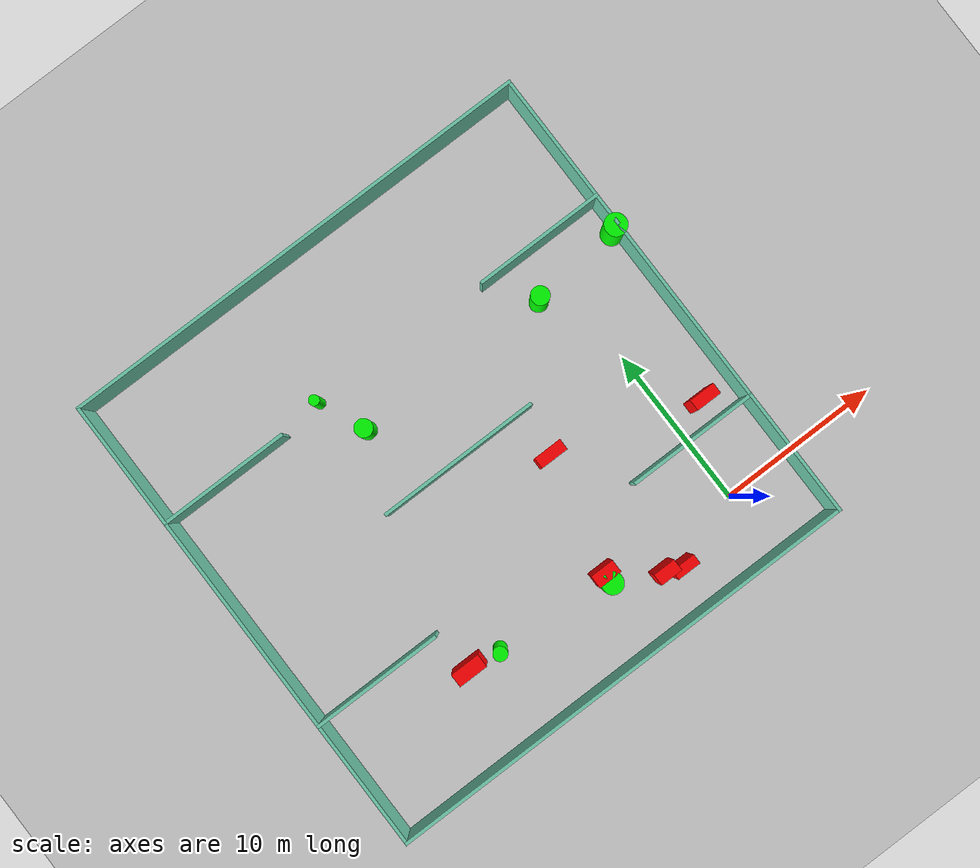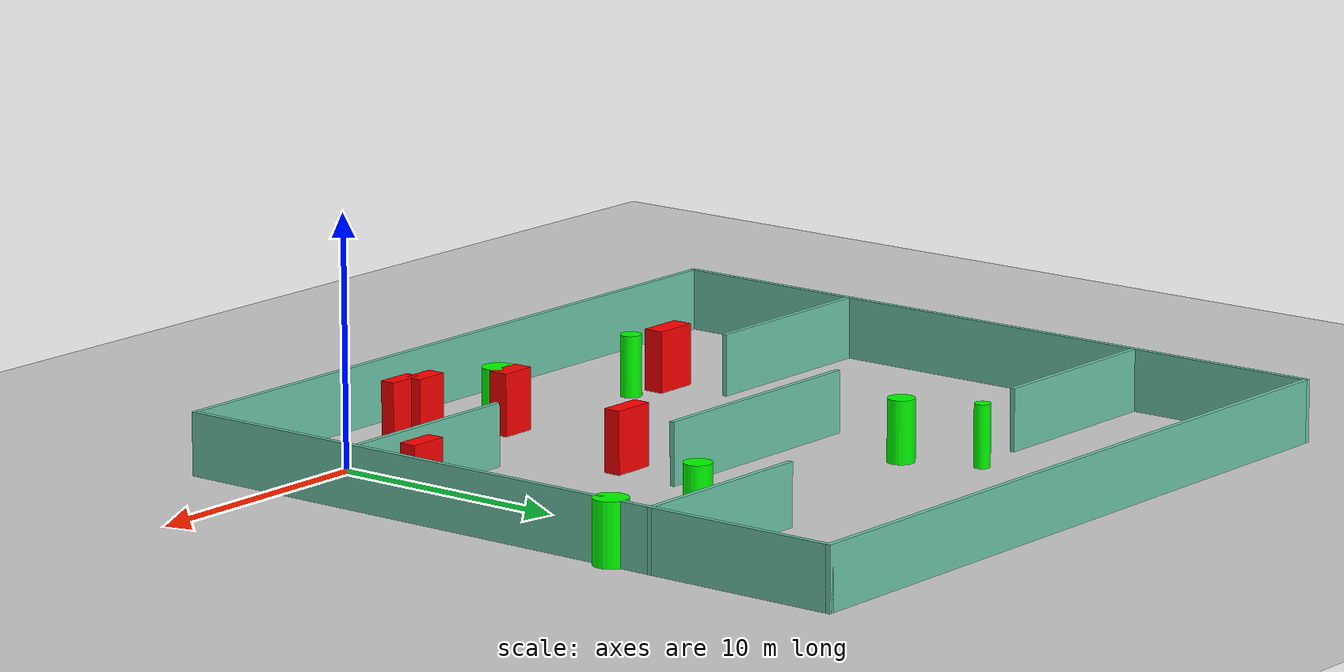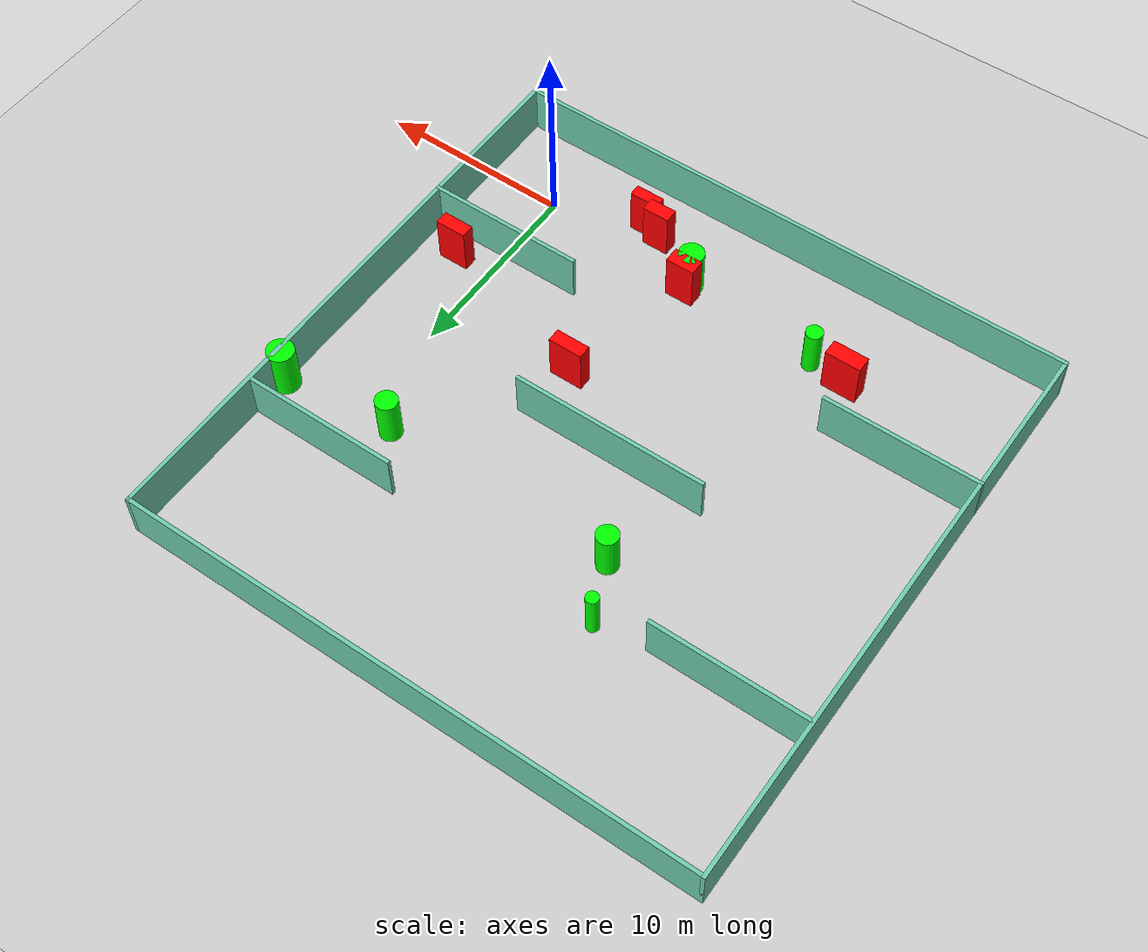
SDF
<sdf version="1.7">
 <world name="default">
  <light name="sun" type="directional">
   <pose>0 0 10 0 -0 0</pose>
   <diffuse>0.8 0.8 0.8 1</diffuse>
   <specular>0.2 0.2 0.2 1</specular>
   <attenuation>
    <range>1000</range>
    <constant>0.9</constant>
    <linear>0.01</linear>
    <quadratic>0.001</quadratic>
   </attenuation>
   <direction>-0.5 0.1 -0.9</direction>
   <spot><inner_angle>0</inner_angle><outer_angle>0</outer_angle><falloff>0</falloff></spot>
  </light>
  <model name="ground_plane">
   <static>1</static>
   <link name="link">
    <collision name="collision">
     <geometry><plane><normal>0 0 1</normal><size>100 100</size></plane></geometry>
     <surface>
      <contact><collide_bitmask>65535</collide_bitmask></contact>
      <friction><ode><mu>100</mu><mu2>50</mu2></ode></friction>
     </surface>
    </collision>
    <visual name="visual">
     <cast_shadows>0</cast_shadows>
     <geometry><plane><normal>0 0 1</normal><size>100 100</size></plane></geometry>
     <material>
      <script><uri>file://media/materials/scripts/gazebo.material</uri><name>Gazebo/Grey</name></script>
     </material>
    </visual>
   </link>
  </model>
  <gravity>0 0 -9.8</gravity>
  <magnetic_field>6e-06 2.3e-05 -4.2e-05</magnetic_field>
  <atmosphere type="adiabatic"/>
  <physics type="ode">
   <max_step_size>0.001</max_step_size>
   <real_time_factor>1</real_time_factor>
   <real_time_update_rate>1000</real_time_update_rate>
  </physics>
  <scene><ambient>0.4 0.4 0.4 1</ambient><background>0.7 0.7 0.7 1</background><shadows>1</shadows></scene>
  <spherical_coordinates>
   <surface_model>EARTH_WGS84</surface_model>
   <latitude_deg>0</latitude_deg>
   <longitude_deg>0</longitude_deg>
   <elevation>0</elevation>
   <heading_deg>0</heading_deg>
  </spherical_coordinates>
  <model name="my_base_walls">
   <link name="Wall_10">
    <collision name="Wall_10_Collision">
     <geometry><box><size>8.2 0.2 2.5</size></box></geometry>
     <pose>0 0 1.25 0 -0 0</pose>
    </collision>
    <visual name="Wall_10_Visual">
     <pose>0 0 1.25 0 -0 0</pose>
     <geometry><box><size>8.2 0.2 2.5</size></box></geometry>
     <material>
      <script><uri>file://media/materials/scripts/gazebo.material</uri><name>Gazebo/Grey</name></script>
      <ambient>0.435294 0.796078 0.67451 1</ambient>
     </material>
     <meta><layer>0</layer></meta>
    </visual>
    <pose>-11 -7 0 0 -0 0</pose>
   </link>
   <link name="Wall_12">
    <collision name="Wall_12_Collision">
     <geometry><box><size>8.2 0.2 2.5</size></box></geometry>
     <pose>0 0 1.25 0 -0 0</pose>
    </collision>
    <visual name="Wall_12_Visual">
     <pose>0 0 1.25 0 -0 0</pose>
     <geometry><box><size>8.2 0.2 2.5</size></box></geometry>
     <material>
      <script><uri>file://media/materials/scripts/gazebo.material</uri><name>Gazebo/Grey</name></script>
      <ambient>0.435294 0.796078 0.67451 1</ambient>
     </material>
     <meta><layer>0</layer></meta>
    </visual>
    <pose>-11 7 0 0 -0 0</pose>
   </link>
   <link name="Wall_14">
    <collision name="Wall_14_Collision">
     <geometry><box><size>8.2 0.2 2.5</size></box></geometry>
     <pose>0 0 1.25 0 -0 0</pose>
    </collision>
    <visual name="Wall_14_Visual">
     <pose>0 0 1.25 0 -0 0</pose>
     <geometry><box><size>8.2 0.2 2.5</size></box></geometry>
     <material>
      <script><uri>file://media/materials/scripts/gazebo.material</uri><name>Gazebo/Grey</name></script>
      <ambient>0.435294 0.796078 0.67451 1</ambient>
     </material>
     <meta><layer>0</layer></meta>
    </visual>
    <pose>11 7 0 0 -0 3.14159</pose>
   </link>
   <link name="Wall_16">
    <collision name="Wall_16_Collision">
     <geometry><box><size>10.2 0.2 2.5</size></box></geometry>
     <pose>0 0 1.25 0 -0 0</pose>
    </collision>
    <visual name="Wall_16_Visual">
     <pose>0 0 1.25 0 -0 0</pose>
     <geometry><box><size>10.2 0.2 2.5</size></box></geometry>
     <material>
      <script><uri>file://media/materials/scripts/gazebo.material</uri><name>Gazebo/Grey</name></script>
      <ambient>0.435294 0.796078 0.67451 1</ambient>
     </material>
     <meta><layer>0</layer></meta>
    </visual>
    <pose>0 0 0 0 -0 3.14159</pose>
   </link>
   <link name="Wall_2">
    <collision name="Wall_2_Collision">
     <geometry><box><size>30.2 0.2 2.5</size></box></geometry>
     <pose>0 0 1.25 0 -0 0</pose>
    </collision>
    <visual name="Wall_2_Visual">
     <pose>0 0 1.25 0 -0 0</pose>
     <geometry><box><size>30.2 0.2 2.5</size></box></geometry>
     <material>
      <script><uri>file://media/materials/scripts/gazebo.material</uri><name>Gazebo/Grey</name></script>
      <ambient>0.435294 0.796078 0.67451 1</ambient>
     </material>
     <meta><layer>0</layer></meta>
    </visual>
    <pose>0 -15 0 0 -0 3.14159</pose>
   </link>
   <link name="Wall_3">
    <collision name="Wall_3_Collision">
     <geometry><box><size>30.2 0.2 2.5</size></box></geometry>
     <pose>0 0 1.25 0 -0 0</pose>
    </collision>
    <visual name="Wall_3_Visual">
     <pose>0 0 1.25 0 -0 0</pose>
     <geometry><box><size>30.2 0.2 2.5</size></box></geometry>
     <material>
      <script><uri>file://media/materials/scripts/gazebo.material</uri><name>Gazebo/Grey</name></script>
      <ambient>0.435294 0.796078 0.67451 1</ambient>
     </material>
     <meta><layer>0</layer></meta>
    </visual>
    <pose>-15 0 0 0 -0 1.5708</pose>
   </link>
   <link name="Wall_4">
    <collision name="Wall_4_Collision">
     <geometry><box><size>30.2 0.2 2.5</size></box></geometry>
     <pose>0 0 1.25 0 -0 0</pose>
    </collision>
    <visual name="Wall_4_Visual">
     <pose>0 0 1.25 0 -0 0</pose>
     <geometry><box><size>30.2 0.2 2.5</size></box></geometry>
     <material>
      <script><uri>file://media/materials/scripts/gazebo.material</uri><name>Gazebo/Grey</name></script>
      <ambient>0.435294 0.796078 0.67451 1</ambient>
     </material>
     <meta><layer>0</layer></meta>
    </visual>
    <pose>0 15 0 0 -0 0</pose>
   </link>
   <link name="Wall_6">
    <collision name="Wall_6_Collision">
     <geometry><box><size>30.2 0.2 2.5</size></box></geometry>
     <pose>0 0 1.25 0 -0 0</pose>
    </collision>
    <visual name="Wall_6_Visual">
     <pose>0 0 1.25 0 -0 0</pose>
     <geometry><box><size>30.2 0.2 2.5</size></box></geometry>
     <material>
      <script><uri>file://media/materials/scripts/gazebo.material</uri><name>Gazebo/Grey</name></script>
      <ambient>0.435294 0.796078 0.67451 1</ambient>
     </material>
     <meta><layer>0</layer></meta>
    </visual>
    <pose>15 0 0 0 -0 1.5708</pose>
   </link>
   <link name="Wall_8">
    <collision name="Wall_8_Collision">
     <geometry><box><size>8.2 0.2 2.5</size></box></geometry>
     <pose>0 0 1.25 0 -0 0</pose>
    </collision>
    <visual name="Wall_8_Visual">
     <pose>0 0 1.25 0 -0 0</pose>
     <geometry><box><size>8.2 0.2 2.5</size></box></geometry>
     <material>
      <script><uri>file://media/materials/scripts/gazebo.material</uri><name>Gazebo/Grey</name></script>
      <ambient>0.435294 0.796078 0.67451 1</ambient>
     </material>
     <meta><layer>0</layer></meta>
    </visual>
    <pose>11 -7 0 0 -0 3.14159</pose>
   </link>
   <static>1</static>
   <pose>-11 11 0 0 -0 0</pose>
  </model>
  <model name="cylinder1">
   <static>1</static>
   <link name="link">
    <inertial>
     <mass>1</mass>
     <inertia><ixx>0.5</ixx><ixy>0</ixy><ixz>0</ixz><iyy>0.5</iyy><iyz>0</iyz><izz>1</izz></inertia>
    </inertial>
    <collision name="collision">
     <geometry><cylinder><radius>0.5637747661125309</radius><length>2.5</length></cylinder></geometry>
    </collision>
    <visual name="visual">
     <geometry><cylinder><radius>0.5637747661125309</radius><length>2.5</length></cylinder></geometry>
     <material>
      <ambient>0 1 0 1</ambient>
      <diffuse>0 1 0 1</diffuse>
      <specular>0.1 0.1 0.1 1</specular>
      <emissive>0 0 0 0</emissive>
     </material>
    </visual>
   </link>
   <pose>-1.8925316632070164 15.445110293957317 1.25 0 0 0</pose>
  </model>
  <model name="cylinder2">
   <static>1</static>
   <link name="link">
    <inertial>
     <mass>1</mass>
     <inertia><ixx>0.5</ixx><ixy>0</ixy><ixz>0</ixz><iyy>0.5</iyy><iyz>0</iyz><izz>1</izz></inertia>
    </inertial>
    <collision name="collision">
     <geometry><cylinder><radius>0.43174058525953973</radius><length>2.5</length></cylinder></geometry>
    </collision>
    <visual name="visual">
     <geometry><cylinder><radius>0.43174058525953973</radius><length>2.5</length></cylinder></geometry>
     <material>
      <ambient>0 1 0 1</ambient>
      <diffuse>0 1 0 1</diffuse>
      <specular>0.1 0.1 0.1 1</specular>
      <emissive>0 0 0 0</emissive>
     </material>
    </visual>
   </link>
   <pose>-15.666455675745048 1.086122089512096 1.25 0 0 0</pose>
  </model>
  <model name="cylinder3">
   <static>1</static>
   <link name="link">
    <inertial>
     <mass>1</mass>
     <inertia><ixx>0.5</ixx><ixy>0</ixy><ixz>0</ixz><iyy>0.5</iyy><iyz>0</iyz><izz>1</izz></inertia>
    </inertial>
    <collision name="collision">
     <geometry><cylinder><radius>0.3238084341702395</radius><length>2.5</length></cylinder></geometry>
    </collision>
    <visual name="visual">
     <geometry><cylinder><radius>0.3238084341702395</radius><length>2.5</length></cylinder></geometry>
     <material>
      <ambient>0 1 0 1</ambient>
      <diffuse>0 1 0 1</diffuse>
      <specular>0.1 0.1 0.1 1</specular>
      <emissive>0 0 0 0</emissive>
     </material>
    </visual>
   </link>
   <pose>-15.37122774849744 18.43709081723615 1.25 0 0 0</pose>
  </model>
  <model name="cylinder4">
   <static>1</static>
   <link name="link">
    <inertial>
     <mass>1</mass>
     <inertia><ixx>0.5</ixx><ixy>0</ixy><ixz>0</ixz><iyy>0.5</iyy><iyz>0</iyz><izz>1</izz></inertia>
    </inertial>
    <collision name="collision">
     <geometry><cylinder><radius>0.6858469248665366</radius><length>2.5</length></cylinder></geometry>
    </collision>
    <visual name="visual">
     <geometry><cylinder><radius>0.6858469248665366</radius><length>2.5</length></cylinder></geometry>
     <material>
      <ambient>0 1 0 1</ambient>
      <diffuse>0 1 0 1</diffuse>
      <specular>0.1 0.1 0.1 1</specular>
      <emissive>0 0 0 0</emissive>
     </material>
    </visual>
   </link>
   <pose>3.856861354892157 16.035870968037905 1.25 0 0 0</pose>
  </model>
  <model name="cylinder5">
   <static>1</static>
   <link name="link">
    <inertial>
     <mass>1</mass>
     <inertia><ixx>0.5</ixx><ixy>0</ixy><ixz>0</ixz><iyy>0.5</iyy><iyz>0</iyz><izz>1</izz></inertia>
    </inertial>
    <collision name="collision">
     <geometry><cylinder><radius>0.648081143185321</radius><length>2.5</length></cylinder></geometry>
    </collision>
    <visual name="visual">
     <geometry><cylinder><radius>0.648081143185321</radius><length>2.5</length></cylinder></geometry>
     <material>
      <ambient>0 1 0 1</ambient>
      <diffuse>0 1 0 1</diffuse>
      <specular>0.1 0.1 0.1 1</specular>
      <emissive>0 0 0 0</emissive>
     </material>
    </visual>
   </link>
   <pose>-8.401057661157319 0.3957295264248435 1.25 0 0 0</pose>
  </model>
  <model name="cylinder6">
   <static>1</static>
   <link name="link">
    <inertial>
     <mass>1</mass>
     <inertia><ixx>0.5</ixx><ixy>0</ixy><ixz>0</ixz><iyy>0.5</iyy><iyz>0</iyz><izz>1</izz></inertia>
    </inertial>
    <collision name="collision">
     <geometry><cylinder><radius>0.5471317742225407</radius><length>2.5</length></cylinder></geometry>
    </collision>
    <visual name="visual">
     <geometry><cylinder><radius>0.5471317742225407</radius><length>2.5</length></cylinder></geometry>
     <material>
      <ambient>0 1 0 1</ambient>
      <diffuse>0 1 0 1</diffuse>
      <specular>0.1 0.1 0.1 1</specular>
      <emissive>0 0 0 0</emissive>
     </material>
    </visual>
   </link>
   <pose>-14.126218975800315 15.543931304316331 1.25 0 0 0</pose>
  </model>
  <model name="box1">
   <static>1</static>
   <link name="link">
    <inertial>
     <mass>1</mass>
     <inertia><ixx>0.083</ixx><ixy>0</ixy><ixz>0</ixz><iyy>0.083</iyy><iyz>0</iyz><izz>0.083</izz></inertia>
    </inertial>
    <collision name="collision">
     <geometry><box><size>1.4903705740406137 0.8143541699185297 2.5</size></box></geometry>
    </collision>
    <visual name="visual">
     <geometry><box><size>1.4903705740406137 0.8143541699185297 2.5</size></box></geometry>
     <material>
      <ambient>1 0 0 1</ambient>
      <diffuse>1 0 0 1</diffuse>
      <specular>0.1 0.1 0.1 1</specular>
      <emissive>0 0 0 0</emissive>
     </material>
    </visual>
    <sensor name="my_contact" type="contact">
     <contact><collision>box_collision</collision><topic>__default_topic__</topic></contact>
    </sensor>
   </link>
   <pose>-8.383782143307531 1.01023745009768 1.25 0 0 0</pose>
  </model>
  <model name="box2">
   <static>1</static>
   <link name="link">
    <inertial>
     <mass>1</mass>
     <inertia><ixx>0.083</ixx><ixy>0</ixy><ixz>0</ixz><iyy>0.083</iyy><iyz>0</iyz><izz>0.083</izz></inertia>
    </inertial>
    <collision name="collision">
     <geometry><box><size>1.8483321867517508 0.8312465213512445 2.5</size></box></geometry>
    </collision>
    <visual name="visual">
     <geometry><box><size>1.8483321867517508 0.8312465213512445 2.5</size></box></geometry>
     <material>
      <ambient>1 0 0 1</ambient>
      <diffuse>1 0 0 1</diffuse>
      <specular>0.1 0.1 0.1 1</specular>
      <emissive>0 0 0 0</emissive>
     </material>
    </visual>
    <sensor name="my_contact" type="contact">
     <contact><collision>box_collision</collision><topic>__default_topic__</topic></contact>
    </sensor>
   </link>
   <pose>-17.59664321265469 1.395136447692229 1.25 0 0 0</pose>
  </model>
  <model name="box3">
   <static>1</static>
   <link name="link">
    <inertial>
     <mass>1</mass>
     <inertia><ixx>0.083</ixx><ixy>0</ixy><ixz>0</ixz><iyy>0.083</iyy><iyz>0</iyz><izz>0.083</izz></inertia>
    </inertial>
    <collision name="collision">
     <geometry><box><size>1.7703590951208565 0.6985162303949408 2.5</size></box></geometry>
    </collision>
    <visual name="visual">
     <geometry><box><size>1.7703590951208565 0.6985162303949408 2.5</size></box></geometry>
     <material>
      <ambient>1 0 0 1</ambient>
      <diffuse>1 0 0 1</diffuse>
      <specular>0.1 0.1 0.1 1</specular>
      <emissive>0 0 0 0</emissive>
     </material>
    </visual>
    <sensor name="my_contact" type="contact">
     <contact><collision>box_collision</collision><topic>__default_topic__</topic></contact>
    </sensor>
   </link>
   <pose>-6.762249072232056 8.119387492001865 1.25 0 0 0</pose>
  </model>
  <model name="box4">
   <static>1</static>
   <link name="link">
    <inertial>
     <mass>1</mass>
     <inertia><ixx>0.083</ixx><ixy>0</ixy><ixz>0</ixz><iyy>0.083</iyy><iyz>0</iyz><izz>0.083</izz></inertia>
    </inertial>
    <collision name="collision">
     <geometry><box><size>1.506624206079598 0.6030552482317915 2.5</size></box></geometry>
    </collision>
    <visual name="visual">
     <geometry><box><size>1.506624206079598 0.6030552482317915 2.5</size></box></geometry>
     <material>
      <ambient>1 0 0 1</ambient>
      <diffuse>1 0 0 1</diffuse>
      <specular>0.1 0.1 0.1 1</specular>
      <emissive>0 0 0 0</emissive>
     </material>
    </visual>
    <sensor name="my_contact" type="contact">
     <contact><collision>box_collision</collision><topic>__default_topic__</topic></contact>
    </sensor>
   </link>
   <pose>-4.648926426380765 -1.3520903191774578 1.25 0 0 0</pose>
  </model>
  <model name="box5">
   <static>1</static>
   <link name="link">
    <inertial>
     <mass>1</mass>
     <inertia><ixx>0.083</ixx><ixy>0</ixy><ixz>0</ixz><iyy>0.083</iyy><iyz>0</iyz><izz>0.083</izz></inertia>
    </inertial>
    <collision name="collision">
     <geometry><box><size>1.4025913515794408 0.7327737495170591 2.5</size></box></geometry>
    </collision>
    <visual name="visual">
     <geometry><box><size>1.4025913515794408 0.7327737495170591 2.5</size></box></geometry>
     <material>
      <ambient>1 0 0 1</ambient>
      <diffuse>1 0 0 1</diffuse>
      <specular>0.1 0.1 0.1 1</specular>
      <emissive>0 0 0 0</emissive>
     </material>
    </visual>
    <sensor name="my_contact" type="contact">
     <contact><collision>box_collision</collision><topic>__default_topic__</topic></contact>
    </sensor>
   </link>
   <pose>-5.628193197384501 -0.975976298951081 1.25 0 0 0</pose>
  </model>
  <model name="box6">
   <static>1</static>
   <link name="link">
    <inertial>
     <mass>1</mass>
     <inertia><ixx>0.083</ixx><ixy>0</ixy><ixz>0</ixz><iyy>0.083</iyy><iyz>0</iyz><izz>0.083</izz></inertia>
    </inertial>
    <collision name="collision">
     <geometry><box><size>1.604409301344642 0.7029726135998458 2.5</size></box></geometry>
    </collision>
    <visual name="visual">
     <geometry><box><size>1.604409301344642 0.7029726135998458 2.5</size></box></geometry>
     <material>
      <ambient>1 0 0 1</ambient>
      <diffuse>1 0 0 1</diffuse>
      <specular>0.1 0.1 0.1 1</specular>
      <emissive>0 0 0 0</emissive>
     </material>
    </visual>
    <sensor name="my_contact" type="contact">
     <contact><collision>box_collision</collision><topic>__default_topic__</topic></contact>
    </sensor>
   </link>
   <pose>1.9457607850134373 5.432203347976408 1.25 0 0 0</pose>
  </model>
 </world>
</sdf>
